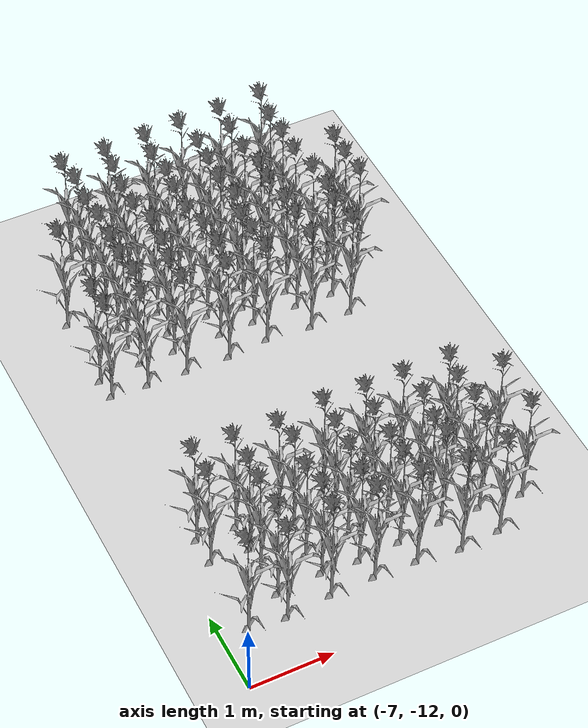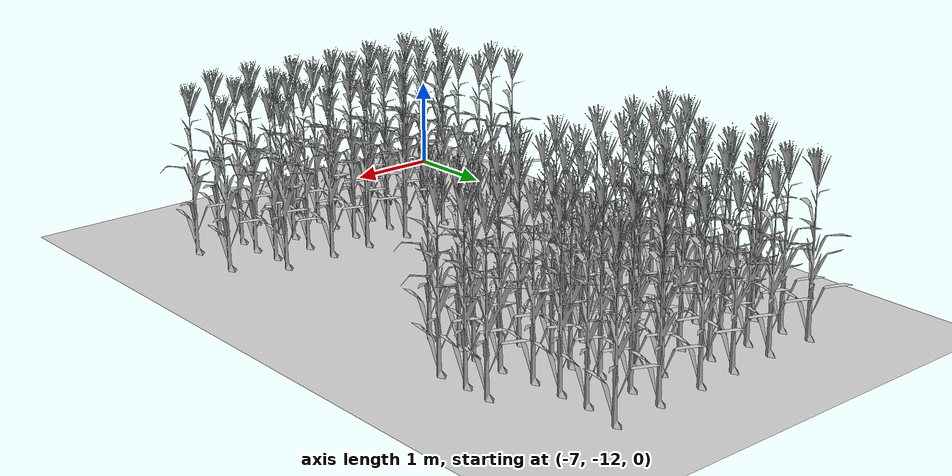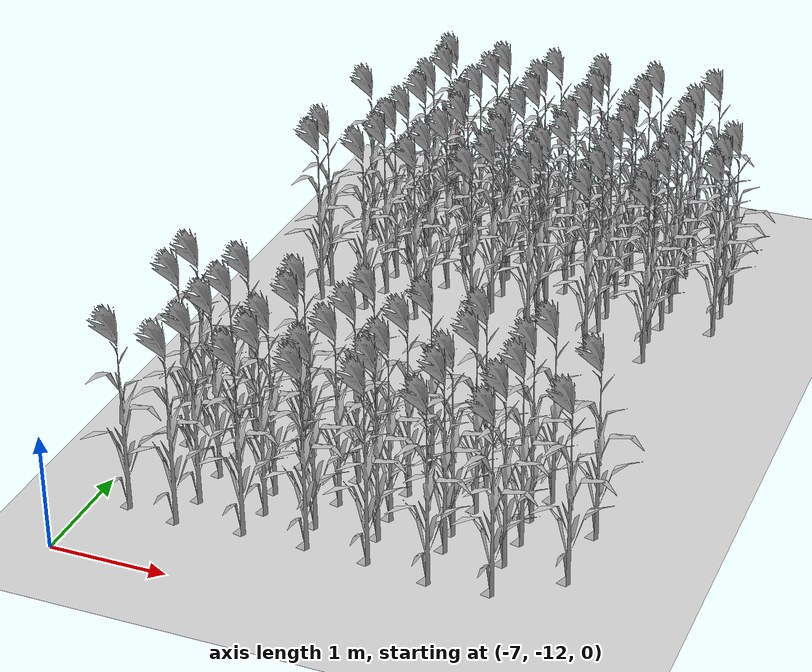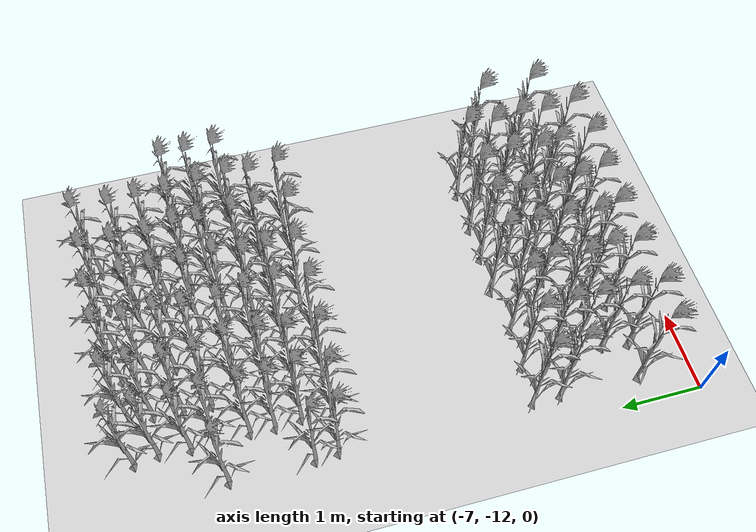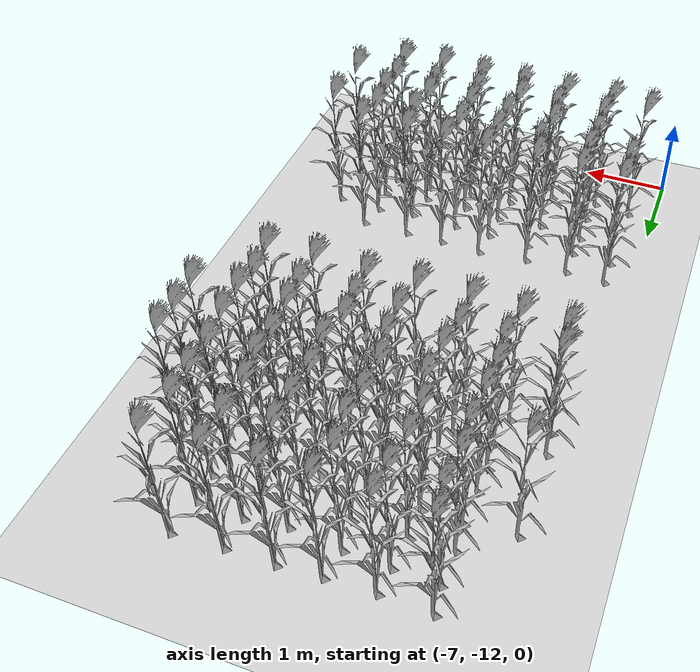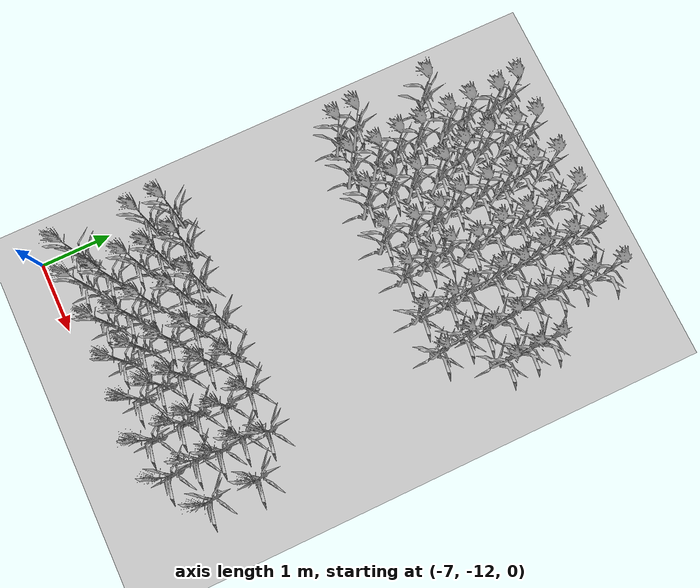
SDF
<sdf version="1.7">
 <world name="farmland_world">
  <model name="ground_plane">
   <static>1</static>
   <link name="link">
    <collision name="collision">
     <geometry><plane><normal>0 0 1</normal><size>40.0 40.0</size></plane></geometry>
     <surface><friction><ode><mu>100</mu><mu2>50</mu2></ode></friction></surface>
    </collision>
    <visual name="visual">
     <cast_shadows>0</cast_shadows>
     <geometry><plane><normal>0 0 1</normal><size>40.0 40.0</size></plane></geometry>
     <material>
      <script><uri>file://media/materials/scripts/gazebo.material</uri><name>Gazebo/Grey</name></script>
     </material>
    </visual>
   </link>
  </model>
  <model name="tree_3_2019">
   <static>1</static>
   <link name="link">
    <collision name="collision">
     <geometry><mesh><uri>model://Corn_low_poly/corn.obj</uri><scale>1 1 1</scale></mesh></geometry>
     <surface><friction><ode><mu>100</mu><mu2>50</mu2></ode></friction></surface>
    </collision>
    <visual name="visual">
     <geometry><mesh><uri>model://Corn_low_poly/corn.obj</uri><scale>1 1 1</scale></mesh></geometry>
    </visual>
   </link>
   <pose>-3.1188060616813673 -10.998462419891771 0 0 0 0</pose>
  </model>
  <model name="tree_3_2020">
   <static>1</static>
   <link name="link">
    <collision name="collision">
     <geometry><mesh><uri>model://Corn_low_poly/corn.obj</uri><scale>1 1 1</scale></mesh></geometry>
     <surface><friction><ode><mu>100</mu><mu2>50</mu2></ode></friction></surface>
    </collision>
    <visual name="visual">
     <geometry><mesh><uri>model://Corn_low_poly/corn.obj</uri><scale>1 1 1</scale></mesh></geometry>
    </visual>
   </link>
   <pose>-3.6424351699942092 -10.955396764620772 0 0 0 0</pose>
  </model>
  <model name="tree_3_2021">
   <static>1</static>
   <link name="link">
    <collision name="collision">
     <geometry><mesh><uri>model://Corn_low_poly/corn.obj</uri><scale>1 1 1</scale></mesh></geometry>
     <surface><friction><ode><mu>100</mu><mu2>50</mu2></ode></friction></surface>
    </collision>
    <visual name="visual">
     <geometry><mesh><uri>model://Corn_low_poly/corn.obj</uri><scale>1 1 1</scale></mesh></geometry>
    </visual>
   </link>
   <pose>-4.128545392084841 -10.950747902956085 0 0 0 0</pose>
  </model>
  <model name="tree_3_2022">
   <static>1</static>
   <link name="link">
    <collision name="collision">
     <geometry><mesh><uri>model://Corn_low_poly/corn.obj</uri><scale>1 1 1</scale></mesh></geometry>
     <surface><friction><ode><mu>100</mu><mu2>50</mu2></ode></friction></surface>
    </collision>
    <visual name="visual">
     <geometry><mesh><uri>model://Corn_low_poly/corn.obj</uri><scale>1 1 1</scale></mesh></geometry>
    </visual>
   </link>
   <pose>-4.665748753012415 -10.990858900688755 0 0 0 0</pose>
  </model>
  <model name="tree_3_2023">
   <static>1</static>
   <link name="link">
    <collision name="collision">
     <geometry><mesh><uri>model://Corn_low_poly/corn.obj</uri><scale>1 1 1</scale></mesh></geometry>
     <surface><friction><ode><mu>100</mu><mu2>50</mu2></ode></friction></surface>
    </collision>
    <visual name="visual">
     <geometry><mesh><uri>model://Corn_low_poly/corn.obj</uri><scale>1 1 1</scale></mesh></geometry>
    </visual>
   </link>
   <pose>-5.18372348365122 -11.019534800564706 0 0 0 0</pose>
  </model>
  <model name="tree_3_2024">
   <static>1</static>
   <link name="link">
    <collision name="collision">
     <geometry><mesh><uri>model://Corn_low_poly/corn.obj</uri><scale>1 1 1</scale></mesh></geometry>
     <surface><friction><ode><mu>100</mu><mu2>50</mu2></ode></friction></surface>
    </collision>
    <visual name="visual">
     <geometry><mesh><uri>model://Corn_low_poly/corn.obj</uri><scale>1 1 1</scale></mesh></geometry>
    </visual>
   </link>
   <pose>-5.628020525119721 -10.990071183110084 0 0 0 0</pose>
  </model>
  <model name="tree_3_2025">
   <static>1</static>
   <link name="link">
    <collision name="collision">
     <geometry><mesh><uri>model://Corn_low_poly/corn.obj</uri><scale>1 1 1</scale></mesh></geometry>
     <surface><friction><ode><mu>100</mu><mu2>50</mu2></ode></friction></surface>
    </collision>
    <visual name="visual">
     <geometry><mesh><uri>model://Corn_low_poly/corn.obj</uri><scale>1 1 1</scale></mesh></geometry>
    </visual>
   </link>
   <pose>-6.183372743550809 -11.029633708614561 0 0 0 0</pose>
  </model>
  <model name="tree_3_2054">
   <static>1</static>
   <link name="link">
    <collision name="collision">
     <geometry><mesh><uri>model://Corn_low_poly/corn.obj</uri><scale>1 1 1</scale></mesh></geometry>
     <surface><friction><ode><mu>100</mu><mu2>50</mu2></ode></friction></surface>
    </collision>
    <visual name="visual">
     <geometry><mesh><uri>model://Corn_low_poly/corn.obj</uri><scale>1 1 1</scale></mesh></geometry>
    </visual>
   </link>
   <pose>-3.601302174312438 -11.33980446337948 0 0 0 0</pose>
  </model>
  <model name="tree_3_2055">
   <static>1</static>
   <link name="link">
    <collision name="collision">
     <geometry><mesh><uri>model://Corn_low_poly/corn.obj</uri><scale>1 1 1</scale></mesh></geometry>
     <surface><friction><ode><mu>100</mu><mu2>50</mu2></ode></friction></surface>
    </collision>
    <visual name="visual">
     <geometry><mesh><uri>model://Corn_low_poly/corn.obj</uri><scale>1 1 1</scale></mesh></geometry>
    </visual>
   </link>
   <pose>-4.099351304013196 -11.376995340920022 0 0 0 0</pose>
  </model>
  <model name="tree_3_2056">
   <static>1</static>
   <link name="link">
    <collision name="collision">
     <geometry><mesh><uri>model://Corn_low_poly/corn.obj</uri><scale>1 1 1</scale></mesh></geometry>
     <surface><friction><ode><mu>100</mu><mu2>50</mu2></ode></friction></surface>
    </collision>
    <visual name="visual">
     <geometry><mesh><uri>model://Corn_low_poly/corn.obj</uri><scale>1 1 1</scale></mesh></geometry>
    </visual>
   </link>
   <pose>-4.619503359095879 -11.309855907956345 0 0 0 0</pose>
  </model>
  <model name="tree_3_2057">
   <static>1</static>
   <link name="link">
    <collision name="collision">
     <geometry><mesh><uri>model://Corn_low_poly/corn.obj</uri><scale>1 1 1</scale></mesh></geometry>
     <surface><friction><ode><mu>100</mu><mu2>50</mu2></ode></friction></surface>
    </collision>
    <visual name="visual">
     <geometry><mesh><uri>model://Corn_low_poly/corn.obj</uri><scale>1 1 1</scale></mesh></geometry>
    </visual>
   </link>
   <pose>-5.13489152892437 -11.294146244192163 0 0 0 0</pose>
  </model>
  <model name="tree_3_2058">
   <static>1</static>
   <link name="link">
    <collision name="collision">
     <geometry><mesh><uri>model://Corn_low_poly/corn.obj</uri><scale>1 1 1</scale></mesh></geometry>
     <surface><friction><ode><mu>100</mu><mu2>50</mu2></ode></friction></surface>
    </collision>
    <visual name="visual">
     <geometry><mesh><uri>model://Corn_low_poly/corn.obj</uri><scale>1 1 1</scale></mesh></geometry>
    </visual>
   </link>
   <pose>-5.671768082941956 -11.30155039447048 0 0 0 0</pose>
  </model>
  <model name="tree_3_2059">
   <static>1</static>
   <link name="link">
    <collision name="collision">
     <geometry><mesh><uri>model://Corn_low_poly/corn.obj</uri><scale>1 1 1</scale></mesh></geometry>
     <surface><friction><ode><mu>100</mu><mu2>50</mu2></ode></friction></surface>
    </collision>
    <visual name="visual">
     <geometry><mesh><uri>model://Corn_low_poly/corn.obj</uri><scale>1 1 1</scale></mesh></geometry>
    </visual>
   </link>
   <pose>-6.22611098187191 -11.355826471442418 0 0 0 0</pose>
  </model>
  <model name="tree_3_2060">
   <static>1</static>
   <link name="link">
    <collision name="collision">
     <geometry><mesh><uri>model://Corn_low_poly/corn.obj</uri><scale>1 1 1</scale></mesh></geometry>
     <surface><friction><ode><mu>100</mu><mu2>50</mu2></ode></friction></surface>
    </collision>
    <visual name="visual">
     <geometry><mesh><uri>model://Corn_low_poly/corn.obj</uri><scale>1 1 1</scale></mesh></geometry>
    </visual>
   </link>
   <pose>-6.663393380693463 -11.299957244044558 0 0 0 0</pose>
  </model>
  <model name="tree_3_2122">
   <static>1</static>
   <link name="link">
    <collision name="collision">
     <geometry><mesh><uri>model://Corn_low_poly/corn.obj</uri><scale>1 1 1</scale></mesh></geometry>
     <surface><friction><ode><mu>100</mu><mu2>50</mu2></ode></friction></surface>
    </collision>
    <visual name="visual">
     <geometry><mesh><uri>model://Corn_low_poly/corn.obj</uri><scale>1 1 1</scale></mesh></geometry>
    </visual>
   </link>
   <pose>-3.579204399567506 -10.01309165122431 0 0 0 0</pose>
  </model>
  <model name="tree_3_2123">
   <static>1</static>
   <link name="link">
    <collision name="collision">
     <geometry><mesh><uri>model://Corn_low_poly/corn.obj</uri><scale>1 1 1</scale></mesh></geometry>
     <surface><friction><ode><mu>100</mu><mu2>50</mu2></ode></friction></surface>
    </collision>
    <visual name="visual">
     <geometry><mesh><uri>model://Corn_low_poly/corn.obj</uri><scale>1 1 1</scale></mesh></geometry>
    </visual>
   </link>
   <pose>-4.147175264702648 -10.006349065112603 0 0 0 0</pose>
  </model>
  <model name="tree_3_2124">
   <static>1</static>
   <link name="link">
    <collision name="collision">
     <geometry><mesh><uri>model://Corn_low_poly/corn.obj</uri><scale>1 1 1</scale></mesh></geometry>
     <surface><friction><ode><mu>100</mu><mu2>50</mu2></ode></friction></surface>
    </collision>
    <visual name="visual">
     <geometry><mesh><uri>model://Corn_low_poly/corn.obj</uri><scale>1 1 1</scale></mesh></geometry>
    </visual>
   </link>
   <pose>-4.610092629553595 -10.002192538831888 0 0 0 0</pose>
  </model>
  <model name="tree_3_2125">
   <static>1</static>
   <link name="link">
    <collision name="collision">
     <geometry><mesh><uri>model://Corn_low_poly/corn.obj</uri><scale>1 1 1</scale></mesh></geometry>
     <surface><friction><ode><mu>100</mu><mu2>50</mu2></ode></friction></surface>
    </collision>
    <visual name="visual">
     <geometry><mesh><uri>model://Corn_low_poly/corn.obj</uri><scale>1 1 1</scale></mesh></geometry>
    </visual>
   </link>
   <pose>-5.1029342259847565 -9.97841376687061 0 0 0 0</pose>
  </model>
  <model name="tree_3_2126">
   <static>1</static>
   <link name="link">
    <collision name="collision">
     <geometry><mesh><uri>model://Corn_low_poly/corn.obj</uri><scale>1 1 1</scale></mesh></geometry>
     <surface><friction><ode><mu>100</mu><mu2>50</mu2></ode></friction></surface>
    </collision>
    <visual name="visual">
     <geometry><mesh><uri>model://Corn_low_poly/corn.obj</uri><scale>1 1 1</scale></mesh></geometry>
    </visual>
   </link>
   <pose>-5.681179881802469 -10.035323747498127 0 0 0 0</pose>
  </model>
  <model name="tree_3_2127">
   <static>1</static>
   <link name="link">
    <collision name="collision">
     <geometry><mesh><uri>model://Corn_low_poly/corn.obj</uri><scale>1 1 1</scale></mesh></geometry>
     <surface><friction><ode><mu>100</mu><mu2>50</mu2></ode></friction></surface>
    </collision>
    <visual name="visual">
     <geometry><mesh><uri>model://Corn_low_poly/corn.obj</uri><scale>1 1 1</scale></mesh></geometry>
    </visual>
   </link>
   <pose>-6.189253367888482 -9.997270347225456 0 0 0 0</pose>
  </model>
  <model name="tree_3_2128">
   <static>1</static>
   <link name="link">
    <collision name="collision">
     <geometry><mesh><uri>model://Corn_low_poly/corn.obj</uri><scale>1 1 1</scale></mesh></geometry>
     <surface><friction><ode><mu>100</mu><mu2>50</mu2></ode></friction></surface>
    </collision>
    <visual name="visual">
     <geometry><mesh><uri>model://Corn_low_poly/corn.obj</uri><scale>1 1 1</scale></mesh></geometry>
    </visual>
   </link>
   <pose>-6.656372588608561 -9.973345540743185 0 0 0 0</pose>
  </model>
  <model name="tree_3_2155">
   <static>1</static>
   <link name="link">
    <collision name="collision">
     <geometry><mesh><uri>model://Corn_low_poly/corn.obj</uri><scale>1 1 1</scale></mesh></geometry>
     <surface><friction><ode><mu>100</mu><mu2>50</mu2></ode></friction></surface>
    </collision>
    <visual name="visual">
     <geometry><mesh><uri>model://Corn_low_poly/corn.obj</uri><scale>1 1 1</scale></mesh></geometry>
    </visual>
   </link>
   <pose>-3.1076031799791575 -10.35614904000085 0 0 0 0</pose>
  </model>
  <model name="tree_3_2156">
   <static>1</static>
   <link name="link">
    <collision name="collision">
     <geometry><mesh><uri>model://Corn_low_poly/corn.obj</uri><scale>1 1 1</scale></mesh></geometry>
     <surface><friction><ode><mu>100</mu><mu2>50</mu2></ode></friction></surface>
    </collision>
    <visual name="visual">
     <geometry><mesh><uri>model://Corn_low_poly/corn.obj</uri><scale>1 1 1</scale></mesh></geometry>
    </visual>
   </link>
   <pose>-3.648696620794069 -10.318726534144576 0 0 0 0</pose>
  </model>
  <model name="tree_3_2157">
   <static>1</static>
   <link name="link">
    <collision name="collision">
     <geometry><mesh><uri>model://Corn_low_poly/corn.obj</uri><scale>1 1 1</scale></mesh></geometry>
     <surface><friction><ode><mu>100</mu><mu2>50</mu2></ode></friction></surface>
    </collision>
    <visual name="visual">
     <geometry><mesh><uri>model://Corn_low_poly/corn.obj</uri><scale>1 1 1</scale></mesh></geometry>
    </visual>
   </link>
   <pose>-4.093702147803998 -10.363624869590371 0 0 0 0</pose>
  </model>
  <model name="tree_3_2158">
   <static>1</static>
   <link name="link">
    <collision name="collision">
     <geometry><mesh><uri>model://Corn_low_poly/corn.obj</uri><scale>1 1 1</scale></mesh></geometry>
     <surface><friction><ode><mu>100</mu><mu2>50</mu2></ode></friction></surface>
    </collision>
    <visual name="visual">
     <geometry><mesh><uri>model://Corn_low_poly/corn.obj</uri><scale>1 1 1</scale></mesh></geometry>
    </visual>
   </link>
   <pose>-4.675922366202344 -10.331543391687552 0 0 0 0</pose>
  </model>
  <model name="tree_3_2159">
   <static>1</static>
   <link name="link">
    <collision name="collision">
     <geometry><mesh><uri>model://Corn_low_poly/corn.obj</uri><scale>1 1 1</scale></mesh></geometry>
     <surface><friction><ode><mu>100</mu><mu2>50</mu2></ode></friction></surface>
    </collision>
    <visual name="visual">
     <geometry><mesh><uri>model://Corn_low_poly/corn.obj</uri><scale>1 1 1</scale></mesh></geometry>
    </visual>
   </link>
   <pose>-5.125628625005672 -10.309964587478628 0 0 0 0</pose>
  </model>
  <model name="tree_3_2160">
   <static>1</static>
   <link name="link">
    <collision name="collision">
     <geometry><mesh><uri>model://Corn_low_poly/corn.obj</uri><scale>1 1 1</scale></mesh></geometry>
     <surface><friction><ode><mu>100</mu><mu2>50</mu2></ode></friction></surface>
    </collision>
    <visual name="visual">
     <geometry><mesh><uri>model://Corn_low_poly/corn.obj</uri><scale>1 1 1</scale></mesh></geometry>
    </visual>
   </link>
   <pose>-5.622039448501385 -10.292680232545834 0 0 0 0</pose>
  </model>
  <model name="tree_3_2161">
   <static>1</static>
   <link name="link">
    <collision name="collision">
     <geometry><mesh><uri>model://Corn_low_poly/corn.obj</uri><scale>1 1 1</scale></mesh></geometry>
     <surface><friction><ode><mu>100</mu><mu2>50</mu2></ode></friction></surface>
    </collision>
    <visual name="visual">
     <geometry><mesh><uri>model://Corn_low_poly/corn.obj</uri><scale>1 1 1</scale></mesh></geometry>
    </visual>
   </link>
   <pose>-6.181930789723114 -10.344782435574176 0 0 0 0</pose>
  </model>
  <model name="tree_3_2162">
   <static>1</static>
   <link name="link">
    <collision name="collision">
     <geometry><mesh><uri>model://Corn_low_poly/corn.obj</uri><scale>1 1 1</scale></mesh></geometry>
     <surface><friction><ode><mu>100</mu><mu2>50</mu2></ode></friction></surface>
    </collision>
    <visual name="visual">
     <geometry><mesh><uri>model://Corn_low_poly/corn.obj</uri><scale>1 1 1</scale></mesh></geometry>
    </visual>
   </link>
   <pose>-6.6489467841598495 -10.318924975865166 0 0 0 0</pose>
  </model>
  <model name="tree_3_2190">
   <static>1</static>
   <link name="link">
    <collision name="collision">
     <geometry><mesh><uri>model://Corn_low_poly/corn.obj</uri><scale>1 1 1</scale></mesh></geometry>
     <surface><friction><ode><mu>100</mu><mu2>50</mu2></ode></friction></surface>
    </collision>
    <visual name="visual">
     <geometry><mesh><uri>model://Corn_low_poly/corn.obj</uri><scale>1 1 1</scale></mesh></geometry>
    </visual>
   </link>
   <pose>-3.6150938213091117 -10.647083727629608 0 0 0 0</pose>
  </model>
  <model name="tree_3_2191">
   <static>1</static>
   <link name="link">
    <collision name="collision">
     <geometry><mesh><uri>model://Corn_low_poly/corn.obj</uri><scale>1 1 1</scale></mesh></geometry>
     <surface><friction><ode><mu>100</mu><mu2>50</mu2></ode></friction></surface>
    </collision>
    <visual name="visual">
     <geometry><mesh><uri>model://Corn_low_poly/corn.obj</uri><scale>1 1 1</scale></mesh></geometry>
    </visual>
   </link>
   <pose>-4.152594344029412 -10.71880161723606 0 0 0 0</pose>
  </model>
  <model name="tree_3_2192">
   <static>1</static>
   <link name="link">
    <collision name="collision">
     <geometry><mesh><uri>model://Corn_low_poly/corn.obj</uri><scale>1 1 1</scale></mesh></geometry>
     <surface><friction><ode><mu>100</mu><mu2>50</mu2></ode></friction></surface>
    </collision>
    <visual name="visual">
     <geometry><mesh><uri>model://Corn_low_poly/corn.obj</uri><scale>1 1 1</scale></mesh></geometry>
    </visual>
   </link>
   <pose>-4.677950480850803 -10.708984951683629 0 0 0 0</pose>
  </model>
  <model name="tree_3_2193">
   <static>1</static>
   <link name="link">
    <collision name="collision">
     <geometry><mesh><uri>model://Corn_low_poly/corn.obj</uri><scale>1 1 1</scale></mesh></geometry>
     <surface><friction><ode><mu>100</mu><mu2>50</mu2></ode></friction></surface>
    </collision>
    <visual name="visual">
     <geometry><mesh><uri>model://Corn_low_poly/corn.obj</uri><scale>1 1 1</scale></mesh></geometry>
    </visual>
   </link>
   <pose>-5.137192936481968 -10.657943141993634 0 0 0 0</pose>
  </model>
  <model name="tree_3_2194">
   <static>1</static>
   <link name="link">
    <collision name="collision">
     <geometry><mesh><uri>model://Corn_low_poly/corn.obj</uri><scale>1 1 1</scale></mesh></geometry>
     <surface><friction><ode><mu>100</mu><mu2>50</mu2></ode></friction></surface>
    </collision>
    <visual name="visual">
     <geometry><mesh><uri>model://Corn_low_poly/corn.obj</uri><scale>1 1 1</scale></mesh></geometry>
    </visual>
   </link>
   <pose>-5.678922779426807 -10.700974749874465 0 0 0 0</pose>
  </model>
  <model name="tree_3_2195">
   <static>1</static>
   <link name="link">
    <collision name="collision">
     <geometry><mesh><uri>model://Corn_low_poly/corn.obj</uri><scale>1 1 1</scale></mesh></geometry>
     <surface><friction><ode><mu>100</mu><mu2>50</mu2></ode></friction></surface>
    </collision>
    <visual name="visual">
     <geometry><mesh><uri>model://Corn_low_poly/corn.obj</uri><scale>1 1 1</scale></mesh></geometry>
    </visual>
   </link>
   <pose>-6.198448953334536 -10.640620984440472 0 0 0 0</pose>
  </model>
  <model name="tree_3_2223">
   <static>1</static>
   <link name="link">
    <collision name="collision">
     <geometry><mesh><uri>model://Corn_low_poly/corn.obj</uri><scale>1 1 1</scale></mesh></geometry>
     <surface><friction><ode><mu>100</mu><mu2>50</mu2></ode></friction></surface>
    </collision>
    <visual name="visual">
     <geometry><mesh><uri>model://Corn_low_poly/corn.obj</uri><scale>1 1 1</scale></mesh></geometry>
    </visual>
   </link>
   <pose>-3.1117121745637126 -6.9738410883011515 0 0 0 0</pose>
  </model>
  <model name="tree_3_2224">
   <static>1</static>
   <link name="link">
    <collision name="collision">
     <geometry><mesh><uri>model://Corn_low_poly/corn.obj</uri><scale>1 1 1</scale></mesh></geometry>
     <surface><friction><ode><mu>100</mu><mu2>50</mu2></ode></friction></surface>
    </collision>
    <visual name="visual">
     <geometry><mesh><uri>model://Corn_low_poly/corn.obj</uri><scale>1 1 1</scale></mesh></geometry>
    </visual>
   </link>
   <pose>-3.5690700510928135 -7.041029934449035 0 0 0 0</pose>
  </model>
  <model name="tree_3_2225">
   <static>1</static>
   <link name="link">
    <collision name="collision">
     <geometry><mesh><uri>model://Corn_low_poly/corn.obj</uri><scale>1 1 1</scale></mesh></geometry>
     <surface><friction><ode><mu>100</mu><mu2>50</mu2></ode></friction></surface>
    </collision>
    <visual name="visual">
     <geometry><mesh><uri>model://Corn_low_poly/corn.obj</uri><scale>1 1 1</scale></mesh></geometry>
    </visual>
   </link>
   <pose>-4.093838897696616 -7.016848312792825 0 0 0 0</pose>
  </model>
  <model name="tree_3_2226">
   <static>1</static>
   <link name="link">
    <collision name="collision">
     <geometry><mesh><uri>model://Corn_low_poly/corn.obj</uri><scale>1 1 1</scale></mesh></geometry>
     <surface><friction><ode><mu>100</mu><mu2>50</mu2></ode></friction></surface>
    </collision>
    <visual name="visual">
     <geometry><mesh><uri>model://Corn_low_poly/corn.obj</uri><scale>1 1 1</scale></mesh></geometry>
    </visual>
   </link>
   <pose>-4.676135960275924 -7.029477205636847 0 0 0 0</pose>
  </model>
  <model name="tree_3_2227">
   <static>1</static>
   <link name="link">
    <collision name="collision">
     <geometry><mesh><uri>model://Corn_low_poly/corn.obj</uri><scale>1 1 1</scale></mesh></geometry>
     <surface><friction><ode><mu>100</mu><mu2>50</mu2></ode></friction></surface>
    </collision>
    <visual name="visual">
     <geometry><mesh><uri>model://Corn_low_poly/corn.obj</uri><scale>1 1 1</scale></mesh></geometry>
    </visual>
   </link>
   <pose>-5.115711233943775 -6.967577273991274 0 0 0 0</pose>
  </model>
  <model name="tree_3_2228">
   <static>1</static>
   <link name="link">
    <collision name="collision">
     <geometry><mesh><uri>model://Corn_low_poly/corn.obj</uri><scale>1 1 1</scale></mesh></geometry>
     <surface><friction><ode><mu>100</mu><mu2>50</mu2></ode></friction></surface>
    </collision>
    <visual name="visual">
     <geometry><mesh><uri>model://Corn_low_poly/corn.obj</uri><scale>1 1 1</scale></mesh></geometry>
    </visual>
   </link>
   <pose>-5.652800482511302 -7.01103362735997 0 0 0 0</pose>
  </model>
  <model name="tree_3_2229">
   <static>1</static>
   <link name="link">
    <collision name="collision">
     <geometry><mesh><uri>model://Corn_low_poly/corn.obj</uri><scale>1 1 1</scale></mesh></geometry>
     <surface><friction><ode><mu>100</mu><mu2>50</mu2></ode></friction></surface>
    </collision>
    <visual name="visual">
     <geometry><mesh><uri>model://Corn_low_poly/corn.obj</uri><scale>1 1 1</scale></mesh></geometry>
    </visual>
   </link>
   <pose>-6.170939097241858 -6.9891766081745565 0 0 0 0</pose>
  </model>
  <model name="tree_3_2258">
   <static>1</static>
   <link name="link">
    <collision name="collision">
     <geometry><mesh><uri>model://Corn_low_poly/corn.obj</uri><scale>1 1 1</scale></mesh></geometry>
     <surface><friction><ode><mu>100</mu><mu2>50</mu2></ode></friction></surface>
    </collision>
    <visual name="visual">
     <geometry><mesh><uri>model://Corn_low_poly/corn.obj</uri><scale>1 1 1</scale></mesh></geometry>
    </visual>
   </link>
   <pose>-3.612918464989444 -7.297937894657485 0 0 0 0</pose>
  </model>
  <model name="tree_3_2259">
   <static>1</static>
   <link name="link">
    <collision name="collision">
     <geometry><mesh><uri>model://Corn_low_poly/corn.obj</uri><scale>1 1 1</scale></mesh></geometry>
     <surface><friction><ode><mu>100</mu><mu2>50</mu2></ode></friction></surface>
    </collision>
    <visual name="visual">
     <geometry><mesh><uri>model://Corn_low_poly/corn.obj</uri><scale>1 1 1</scale></mesh></geometry>
    </visual>
   </link>
   <pose>-4.087010044893763 -7.28702818424102 0 0 0 0</pose>
  </model>
  <model name="tree_3_2260">
   <static>1</static>
   <link name="link">
    <collision name="collision">
     <geometry><mesh><uri>model://Corn_low_poly/corn.obj</uri><scale>1 1 1</scale></mesh></geometry>
     <surface><friction><ode><mu>100</mu><mu2>50</mu2></ode></friction></surface>
    </collision>
    <visual name="visual">
     <geometry><mesh><uri>model://Corn_low_poly/corn.obj</uri><scale>1 1 1</scale></mesh></geometry>
    </visual>
   </link>
   <pose>-4.661442453372088 -7.29754089586305 0 0 0 0</pose>
  </model>
  <model name="tree_3_2261">
   <static>1</static>
   <link name="link">
    <collision name="collision">
     <geometry><mesh><uri>model://Corn_low_poly/corn.obj</uri><scale>1 1 1</scale></mesh></geometry>
     <surface><friction><ode><mu>100</mu><mu2>50</mu2></ode></friction></surface>
    </collision>
    <visual name="visual">
     <geometry><mesh><uri>model://Corn_low_poly/corn.obj</uri><scale>1 1 1</scale></mesh></geometry>
    </visual>
   </link>
   <pose>-5.102547328972916 -7.3040404051510786 0 0 0 0</pose>
  </model>
  <model name="tree_3_2262">
   <static>1</static>
   <link name="link">
    <collision name="collision">
     <geometry><mesh><uri>model://Corn_low_poly/corn.obj</uri><scale>1 1 1</scale></mesh></geometry>
     <surface><friction><ode><mu>100</mu><mu2>50</mu2></ode></friction></surface>
    </collision>
    <visual name="visual">
     <geometry><mesh><uri>model://Corn_low_poly/corn.obj</uri><scale>1 1 1</scale></mesh></geometry>
    </visual>
   </link>
   <pose>-5.707351624416964 -7.305963749547142 0 0 0 0</pose>
  </model>
  <model name="tree_3_2263">
   <static>1</static>
   <link name="link">
    <collision name="collision">
     <geometry><mesh><uri>model://Corn_low_poly/corn.obj</uri><scale>1 1 1</scale></mesh></geometry>
     <surface><friction><ode><mu>100</mu><mu2>50</mu2></ode></friction></surface>
    </collision>
    <visual name="visual">
     <geometry><mesh><uri>model://Corn_low_poly/corn.obj</uri><scale>1 1 1</scale></mesh></geometry>
    </visual>
   </link>
   <pose>-6.14156454239216 -7.302867716331731 0 0 0 0</pose>
  </model>
  <model name="tree_3_2264">
   <static>1</static>
   <link name="link">
    <collision name="collision">
     <geometry><mesh><uri>model://Corn_low_poly/corn.obj</uri><scale>1 1 1</scale></mesh></geometry>
     <surface><friction><ode><mu>100</mu><mu2>50</mu2></ode></friction></surface>
    </collision>
    <visual name="visual">
     <geometry><mesh><uri>model://Corn_low_poly/corn.obj</uri><scale>1 1 1</scale></mesh></geometry>
    </visual>
   </link>
   <pose>-6.675735514458045 -7.349871289974445 0 0 0 0</pose>
  </model>
  <model name="tree_3_2292">
   <static>1</static>
   <link name="link">
    <collision name="collision">
     <geometry><mesh><uri>model://Corn_low_poly/corn.obj</uri><scale>1 1 1</scale></mesh></geometry>
     <surface><friction><ode><mu>100</mu><mu2>50</mu2></ode></friction></surface>
    </collision>
    <visual name="visual">
     <geometry><mesh><uri>model://Corn_low_poly/corn.obj</uri><scale>1 1 1</scale></mesh></geometry>
    </visual>
   </link>
   <pose>-3.557365060436528 -7.654924539174369 0 0 0 0</pose>
  </model>
  <model name="tree_3_2293">
   <static>1</static>
   <link name="link">
    <collision name="collision">
     <geometry><mesh><uri>model://Corn_low_poly/corn.obj</uri><scale>1 1 1</scale></mesh></geometry>
     <surface><friction><ode><mu>100</mu><mu2>50</mu2></ode></friction></surface>
    </collision>
    <visual name="visual">
     <geometry><mesh><uri>model://Corn_low_poly/corn.obj</uri><scale>1 1 1</scale></mesh></geometry>
    </visual>
   </link>
   <pose>-4.085350054449222 -7.670139638096989 0 0 0 0</pose>
  </model>
  <model name="tree_3_2294">
   <static>1</static>
   <link name="link">
    <collision name="collision">
     <geometry><mesh><uri>model://Corn_low_poly/corn.obj</uri><scale>1 1 1</scale></mesh></geometry>
     <surface><friction><ode><mu>100</mu><mu2>50</mu2></ode></friction></surface>
    </collision>
    <visual name="visual">
     <geometry><mesh><uri>model://Corn_low_poly/corn.obj</uri><scale>1 1 1</scale></mesh></geometry>
    </visual>
   </link>
   <pose>-4.645003939107649 -7.620698994556048 0 0 0 0</pose>
  </model>
  <model name="tree_3_2295">
   <static>1</static>
   <link name="link">
    <collision name="collision">
     <geometry><mesh><uri>model://Corn_low_poly/corn.obj</uri><scale>1 1 1</scale></mesh></geometry>
     <surface><friction><ode><mu>100</mu><mu2>50</mu2></ode></friction></surface>
    </collision>
    <visual name="visual">
     <geometry><mesh><uri>model://Corn_low_poly/corn.obj</uri><scale>1 1 1</scale></mesh></geometry>
    </visual>
   </link>
   <pose>-5.164416470251318 -7.670657009445404 0 0 0 0</pose>
  </model>
  <model name="tree_3_2296">
   <static>1</static>
   <link name="link">
    <collision name="collision">
     <geometry><mesh><uri>model://Corn_low_poly/corn.obj</uri><scale>1 1 1</scale></mesh></geometry>
     <surface><friction><ode><mu>100</mu><mu2>50</mu2></ode></friction></surface>
    </collision>
    <visual name="visual">
     <geometry><mesh><uri>model://Corn_low_poly/corn.obj</uri><scale>1 1 1</scale></mesh></geometry>
    </visual>
   </link>
   <pose>-5.70653884238292 -7.659127738435613 0 0 0 0</pose>
  </model>
  <model name="tree_3_2297">
   <static>1</static>
   <link name="link">
    <collision name="collision">
     <geometry><mesh><uri>model://Corn_low_poly/corn.obj</uri><scale>1 1 1</scale></mesh></geometry>
     <surface><friction><ode><mu>100</mu><mu2>50</mu2></ode></friction></surface>
    </collision>
    <visual name="visual">
     <geometry><mesh><uri>model://Corn_low_poly/corn.obj</uri><scale>1 1 1</scale></mesh></geometry>
    </visual>
   </link>
   <pose>-6.202652671311217 -7.65123060923813 0 0 0 0</pose>
  </model>
  <model name="tree_3_2298">
   <static>1</static>
   <link name="link">
    <collision name="collision">
     <geometry><mesh><uri>model://Corn_low_poly/corn.obj</uri><scale>1 1 1</scale></mesh></geometry>
     <surface><friction><ode><mu>100</mu><mu2>50</mu2></ode></friction></surface>
    </collision>
    <visual name="visual">
     <geometry><mesh><uri>model://Corn_low_poly/corn.obj</uri><scale>1 1 1</scale></mesh></geometry>
    </visual>
   </link>
   <pose>-6.650255774483709 -7.626102514321328 0 0 0 0</pose>
  </model>
  <model name="tree_3_2326">
   <static>1</static>
   <link name="link">
    <collision name="collision">
     <geometry><mesh><uri>model://Corn_low_poly/corn.obj</uri><scale>1 1 1</scale></mesh></geometry>
     <surface><friction><ode><mu>100</mu><mu2>50</mu2></ode></friction></surface>
    </collision>
    <visual name="visual">
     <geometry><mesh><uri>model://Corn_low_poly/corn.obj</uri><scale>1 1 1</scale></mesh></geometry>
    </visual>
   </link>
   <pose>-3.6416149733113627 -5.993241072173569 0 0 0 0</pose>
  </model>
  <model name="tree_3_2327">
   <static>1</static>
   <link name="link">
    <collision name="collision">
     <geometry><mesh><uri>model://Corn_low_poly/corn.obj</uri><scale>1 1 1</scale></mesh></geometry>
     <surface><friction><ode><mu>100</mu><mu2>50</mu2></ode></friction></surface>
    </collision>
    <visual name="visual">
     <geometry><mesh><uri>model://Corn_low_poly/corn.obj</uri><scale>1 1 1</scale></mesh></geometry>
    </visual>
   </link>
   <pose>-4.167832141326382 -6.038045519904129 0 0 0 0</pose>
  </model>
  <model name="tree_3_2328">
   <static>1</static>
   <link name="link">
    <collision name="collision">
     <geometry><mesh><uri>model://Corn_low_poly/corn.obj</uri><scale>1 1 1</scale></mesh></geometry>
     <surface><friction><ode><mu>100</mu><mu2>50</mu2></ode></friction></surface>
    </collision>
    <visual name="visual">
     <geometry><mesh><uri>model://Corn_low_poly/corn.obj</uri><scale>1 1 1</scale></mesh></geometry>
    </visual>
   </link>
   <pose>-4.619521592329546 -6.02806933338602 0 0 0 0</pose>
  </model>
  <model name="tree_3_2329">
   <static>1</static>
   <link name="link">
    <collision name="collision">
     <geometry><mesh><uri>model://Corn_low_poly/corn.obj</uri><scale>1 1 1</scale></mesh></geometry>
     <surface><friction><ode><mu>100</mu><mu2>50</mu2></ode></friction></surface>
    </collision>
    <visual name="visual">
     <geometry><mesh><uri>model://Corn_low_poly/corn.obj</uri><scale>1 1 1</scale></mesh></geometry>
    </visual>
   </link>
   <pose>-5.139666208584348 -5.9891810205151685 0 0 0 0</pose>
  </model>
  <model name="tree_3_2330">
   <static>1</static>
   <link name="link">
    <collision name="collision">
     <geometry><mesh><uri>model://Corn_low_poly/corn.obj</uri><scale>1 1 1</scale></mesh></geometry>
     <surface><friction><ode><mu>100</mu><mu2>50</mu2></ode></friction></surface>
    </collision>
    <visual name="visual">
     <geometry><mesh><uri>model://Corn_low_poly/corn.obj</uri><scale>1 1 1</scale></mesh></geometry>
    </visual>
   </link>
   <pose>-5.710373252993286 -5.99743900605377 0 0 0 0</pose>
  </model>
  <model name="tree_3_2331">
   <static>1</static>
   <link name="link">
    <collision name="collision">
     <geometry><mesh><uri>model://Corn_low_poly/corn.obj</uri><scale>1 1 1</scale></mesh></geometry>
     <surface><friction><ode><mu>100</mu><mu2>50</mu2></ode></friction></surface>
    </collision>
    <visual name="visual">
     <geometry><mesh><uri>model://Corn_low_poly/corn.obj</uri><scale>1 1 1</scale></mesh></geometry>
    </visual>
   </link>
   <pose>-6.1768007299402035 -6.009781994251623 0 0 0 0</pose>
  </model>
  <model name="tree_3_2359">
   <static>1</static>
   <link name="link">
    <collision name="collision">
     <geometry><mesh><uri>model://Corn_low_poly/corn.obj</uri><scale>1 1 1</scale></mesh></geometry>
     <surface><friction><ode><mu>100</mu><mu2>50</mu2></ode></friction></surface>
    </collision>
    <visual name="visual">
     <geometry><mesh><uri>model://Corn_low_poly/corn.obj</uri><scale>1 1 1</scale></mesh></geometry>
    </visual>
   </link>
   <pose>-3.118364878200184 -6.342985378748024 0 0 0 0</pose>
  </model>
  <model name="tree_3_2360">
   <static>1</static>
   <link name="link">
    <collision name="collision">
     <geometry><mesh><uri>model://Corn_low_poly/corn.obj</uri><scale>1 1 1</scale></mesh></geometry>
     <surface><friction><ode><mu>100</mu><mu2>50</mu2></ode></friction></surface>
    </collision>
    <visual name="visual">
     <geometry><mesh><uri>model://Corn_low_poly/corn.obj</uri><scale>1 1 1</scale></mesh></geometry>
    </visual>
   </link>
   <pose>-3.639583403659242 -6.331303711368394 0 0 0 0</pose>
  </model>
  <model name="tree_3_2361">
   <static>1</static>
   <link name="link">
    <collision name="collision">
     <geometry><mesh><uri>model://Corn_low_poly/corn.obj</uri><scale>1 1 1</scale></mesh></geometry>
     <surface><friction><ode><mu>100</mu><mu2>50</mu2></ode></friction></surface>
    </collision>
    <visual name="visual">
     <geometry><mesh><uri>model://Corn_low_poly/corn.obj</uri><scale>1 1 1</scale></mesh></geometry>
    </visual>
   </link>
   <pose>-4.108212298477536 -6.353298919463818 0 0 0 0</pose>
  </model>
  <model name="tree_3_2362">
   <static>1</static>
   <link name="link">
    <collision name="collision">
     <geometry><mesh><uri>model://Corn_low_poly/corn.obj</uri><scale>1 1 1</scale></mesh></geometry>
     <surface><friction><ode><mu>100</mu><mu2>50</mu2></ode></friction></surface>
    </collision>
    <visual name="visual">
     <geometry><mesh><uri>model://Corn_low_poly/corn.obj</uri><scale>1 1 1</scale></mesh></geometry>
    </visual>
   </link>
   <pose>-4.64207177642826 -6.361278237293592 0 0 0 0</pose>
  </model>
  <model name="tree_3_2363">
   <static>1</static>
   <link name="link">
    <collision name="collision">
     <geometry><mesh><uri>model://Corn_low_poly/corn.obj</uri><scale>1 1 1</scale></mesh></geometry>
     <surface><friction><ode><mu>100</mu><mu2>50</mu2></ode></friction></surface>
    </collision>
    <visual name="visual">
     <geometry><mesh><uri>model://Corn_low_poly/corn.obj</uri><scale>1 1 1</scale></mesh></geometry>
    </visual>
   </link>
   <pose>-5.174948034734742 -6.287004556602931 0 0 0 0</pose>
  </model>
  <model name="tree_3_2364">
   <static>1</static>
   <link name="link">
    <collision name="collision">
     <geometry><mesh><uri>model://Corn_low_poly/corn.obj</uri><scale>1 1 1</scale></mesh></geometry>
     <surface><friction><ode><mu>100</mu><mu2>50</mu2></ode></friction></surface>
    </collision>
    <visual name="visual">
     <geometry><mesh><uri>model://Corn_low_poly/corn.obj</uri><scale>1 1 1</scale></mesh></geometry>
    </visual>
   </link>
   <pose>-5.711297334341872 -6.326646928403893 0 0 0 0</pose>
  </model>
  <model name="tree_3_2365">
   <static>1</static>
   <link name="link">
    <collision name="collision">
     <geometry><mesh><uri>model://Corn_low_poly/corn.obj</uri><scale>1 1 1</scale></mesh></geometry>
     <surface><friction><ode><mu>100</mu><mu2>50</mu2></ode></friction></surface>
    </collision>
    <visual name="visual">
     <geometry><mesh><uri>model://Corn_low_poly/corn.obj</uri><scale>1 1 1</scale></mesh></geometry>
    </visual>
   </link>
   <pose>-6.145540713738667 -6.312296128326888 0 0 0 0</pose>
  </model>
  <model name="tree_3_2366">
   <static>1</static>
   <link name="link">
    <collision name="collision">
     <geometry><mesh><uri>model://Corn_low_poly/corn.obj</uri><scale>1 1 1</scale></mesh></geometry>
     <surface><friction><ode><mu>100</mu><mu2>50</mu2></ode></friction></surface>
    </collision>
    <visual name="visual">
     <geometry><mesh><uri>model://Corn_low_poly/corn.obj</uri><scale>1 1 1</scale></mesh></geometry>
    </visual>
   </link>
   <pose>-6.670480238671851 -6.360971857141381 0 0 0 0</pose>
  </model>
  <model name="tree_3_2393">
   <static>1</static>
   <link name="link">
    <collision name="collision">
     <geometry><mesh><uri>model://Corn_low_poly/corn.obj</uri><scale>1 1 1</scale></mesh></geometry>
     <surface><friction><ode><mu>100</mu><mu2>50</mu2></ode></friction></surface>
    </collision>
    <visual name="visual">
     <geometry><mesh><uri>model://Corn_low_poly/corn.obj</uri><scale>1 1 1</scale></mesh></geometry>
    </visual>
   </link>
   <pose>-3.1278763579659783 -6.63684203395804 0 0 0 0</pose>
  </model>
  <model name="tree_3_2394">
   <static>1</static>
   <link name="link">
    <collision name="collision">
     <geometry><mesh><uri>model://Corn_low_poly/corn.obj</uri><scale>1 1 1</scale></mesh></geometry>
     <surface><friction><ode><mu>100</mu><mu2>50</mu2></ode></friction></surface>
    </collision>
    <visual name="visual">
     <geometry><mesh><uri>model://Corn_low_poly/corn.obj</uri><scale>1 1 1</scale></mesh></geometry>
    </visual>
   </link>
   <pose>-3.5862063450467243 -6.700018441796526 0 0 0 0</pose>
  </model>
  <model name="tree_3_2395">
   <static>1</static>
   <link name="link">
    <collision name="collision">
     <geometry><mesh><uri>model://Corn_low_poly/corn.obj</uri><scale>1 1 1</scale></mesh></geometry>
     <surface><friction><ode><mu>100</mu><mu2>50</mu2></ode></friction></surface>
    </collision>
    <visual name="visual">
     <geometry><mesh><uri>model://Corn_low_poly/corn.obj</uri><scale>1 1 1</scale></mesh></geometry>
    </visual>
   </link>
   <pose>-4.134399143714583 -6.621038424137758 0 0 0 0</pose>
  </model>
  <model name="tree_3_2396">
   <static>1</static>
   <link name="link">
    <collision name="collision">
     <geometry><mesh><uri>model://Corn_low_poly/corn.obj</uri><scale>1 1 1</scale></mesh></geometry>
     <surface><friction><ode><mu>100</mu><mu2>50</mu2></ode></friction></surface>
    </collision>
    <visual name="visual">
     <geometry><mesh><uri>model://Corn_low_poly/corn.obj</uri><scale>1 1 1</scale></mesh></geometry>
    </visual>
   </link>
   <pose>-4.593878809602623 -6.711541009176581 0 0 0 0</pose>
  </model>
  <model name="tree_3_2397">
   <static>1</static>
   <link name="link">
    <collision name="collision">
     <geometry><mesh><uri>model://Corn_low_poly/corn.obj</uri><scale>1 1 1</scale></mesh></geometry>
     <surface><friction><ode><mu>100</mu><mu2>50</mu2></ode></friction></surface>
    </collision>
    <visual name="visual">
     <geometry><mesh><uri>model://Corn_low_poly/corn.obj</uri><scale>1 1 1</scale></mesh></geometry>
    </visual>
   </link>
   <pose>-5.183137619029999 -6.655420868419625 0 0 0 0</pose>
  </model>
  <model name="tree_3_2398">
   <static>1</static>
   <link name="link">
    <collision name="collision">
     <geometry><mesh><uri>model://Corn_low_poly/corn.obj</uri><scale>1 1 1</scale></mesh></geometry>
     <surface><friction><ode><mu>100</mu><mu2>50</mu2></ode></friction></surface>
    </collision>
    <visual name="visual">
     <geometry><mesh><uri>model://Corn_low_poly/corn.obj</uri><scale>1 1 1</scale></mesh></geometry>
    </visual>
   </link>
   <pose>-5.623675478788367 -6.649136666574351 0 0 0 0</pose>
  </model>
  <model name="tree_3_2399">
   <static>1</static>
   <link name="link">
    <collision name="collision">
     <geometry><mesh><uri>model://Corn_low_poly/corn.obj</uri><scale>1 1 1</scale></mesh></geometry>
     <surface><friction><ode><mu>100</mu><mu2>50</mu2></ode></friction></surface>
    </collision>
    <visual name="visual">
     <geometry><mesh><uri>model://Corn_low_poly/corn.obj</uri><scale>1 1 1</scale></mesh></geometry>
    </visual>
   </link>
   <pose>-6.161087043934814 -6.695727096843825 0 0 0 0</pose>
  </model>
  <model name="tree_3_2462">
   <static>1</static>
   <link name="link">
    <collision name="collision">
     <geometry><mesh><uri>model://Corn_low_poly/corn.obj</uri><scale>1 1 1</scale></mesh></geometry>
     <surface><friction><ode><mu>100</mu><mu2>50</mu2></ode></friction></surface>
    </collision>
    <visual name="visual">
     <geometry><mesh><uri>model://Corn_low_poly/corn.obj</uri><scale>1 1 1</scale></mesh></geometry>
    </visual>
   </link>
   <pose>-3.5862725949446115 -5.281193402955081 0 0 0 0</pose>
  </model>
  <model name="tree_3_2463">
   <static>1</static>
   <link name="link">
    <collision name="collision">
     <geometry><mesh><uri>model://Corn_low_poly/corn.obj</uri><scale>1 1 1</scale></mesh></geometry>
     <surface><friction><ode><mu>100</mu><mu2>50</mu2></ode></friction></surface>
    </collision>
    <visual name="visual">
     <geometry><mesh><uri>model://Corn_low_poly/corn.obj</uri><scale>1 1 1</scale></mesh></geometry>
    </visual>
   </link>
   <pose>-4.1439409085771635 -5.31087114825396 0 0 0 0</pose>
  </model>
  <model name="tree_3_2464">
   <static>1</static>
   <link name="link">
    <collision name="collision">
     <geometry><mesh><uri>model://Corn_low_poly/corn.obj</uri><scale>1 1 1</scale></mesh></geometry>
     <surface><friction><ode><mu>100</mu><mu2>50</mu2></ode></friction></surface>
    </collision>
    <visual name="visual">
     <geometry><mesh><uri>model://Corn_low_poly/corn.obj</uri><scale>1 1 1</scale></mesh></geometry>
    </visual>
   </link>
   <pose>-4.666847294888047 -5.318386147678224 0 0 0 0</pose>
  </model>
  <model name="tree_3_2465">
   <static>1</static>
   <link name="link">
    <collision name="collision">
     <geometry><mesh><uri>model://Corn_low_poly/corn.obj</uri><scale>1 1 1</scale></mesh></geometry>
     <surface><friction><ode><mu>100</mu><mu2>50</mu2></ode></friction></surface>
    </collision>
    <visual name="visual">
     <geometry><mesh><uri>model://Corn_low_poly/corn.obj</uri><scale>1 1 1</scale></mesh></geometry>
    </visual>
   </link>
   <pose>-5.127521571150295 -5.349018154434369 0 0 0 0</pose>
  </model>
  <model name="tree_3_2466">
   <static>1</static>
   <link name="link">
    <collision name="collision">
     <geometry><mesh><uri>model://Corn_low_poly/corn.obj</uri><scale>1 1 1</scale></mesh></geometry>
     <surface><friction><ode><mu>100</mu><mu2>50</mu2></ode></friction></surface>
    </collision>
    <visual name="visual">
     <geometry><mesh><uri>model://Corn_low_poly/corn.obj</uri><scale>1 1 1</scale></mesh></geometry>
    </visual>
   </link>
   <pose>-5.649349077638773 -5.37073044726404 0 0 0 0</pose>
  </model>
  <model name="tree_3_2467">
   <static>1</static>
   <link name="link">
    <collision name="collision">
     <geometry><mesh><uri>model://Corn_low_poly/corn.obj</uri><scale>1 1 1</scale></mesh></geometry>
     <surface><friction><ode><mu>100</mu><mu2>50</mu2></ode></friction></surface>
    </collision>
    <visual name="visual">
     <geometry><mesh><uri>model://Corn_low_poly/corn.obj</uri><scale>1 1 1</scale></mesh></geometry>
    </visual>
   </link>
   <pose>-6.197173316130934 -5.357707034569629 0 0 0 0</pose>
  </model>
  <model name="tree_3_2496">
   <static>1</static>
   <link name="link">
    <collision name="collision">
     <geometry><mesh><uri>model://Corn_low_poly/corn.obj</uri><scale>1 1 1</scale></mesh></geometry>
     <surface><friction><ode><mu>100</mu><mu2>50</mu2></ode></friction></surface>
    </collision>
    <visual name="visual">
     <geometry><mesh><uri>model://Corn_low_poly/corn.obj</uri><scale>1 1 1</scale></mesh></geometry>
    </visual>
   </link>
   <pose>-3.652172080210121 -5.675283853158641 0 0 0 0</pose>
  </model>
  <model name="tree_3_2497">
   <static>1</static>
   <link name="link">
    <collision name="collision">
     <geometry><mesh><uri>model://Corn_low_poly/corn.obj</uri><scale>1 1 1</scale></mesh></geometry>
     <surface><friction><ode><mu>100</mu><mu2>50</mu2></ode></friction></surface>
    </collision>
    <visual name="visual">
     <geometry><mesh><uri>model://Corn_low_poly/corn.obj</uri><scale>1 1 1</scale></mesh></geometry>
    </visual>
   </link>
   <pose>-4.158959309768486 -5.655281399409545 0 0 0 0</pose>
  </model>
  <model name="tree_3_2498">
   <static>1</static>
   <link name="link">
    <collision name="collision">
     <geometry><mesh><uri>model://Corn_low_poly/corn.obj</uri><scale>1 1 1</scale></mesh></geometry>
     <surface><friction><ode><mu>100</mu><mu2>50</mu2></ode></friction></surface>
    </collision>
    <visual name="visual">
     <geometry><mesh><uri>model://Corn_low_poly/corn.obj</uri><scale>1 1 1</scale></mesh></geometry>
    </visual>
   </link>
   <pose>-4.608622288771764 -5.715837588934411 0 0 0 0</pose>
  </model>
  <model name="tree_3_2499">
   <static>1</static>
   <link name="link">
    <collision name="collision">
     <geometry><mesh><uri>model://Corn_low_poly/corn.obj</uri><scale>1 1 1</scale></mesh></geometry>
     <surface><friction><ode><mu>100</mu><mu2>50</mu2></ode></friction></surface>
    </collision>
    <visual name="visual">
     <geometry><mesh><uri>model://Corn_low_poly/corn.obj</uri><scale>1 1 1</scale></mesh></geometry>
    </visual>
   </link>
   <pose>-5.181183278730071 -5.664777262616138 0 0 0 0</pose>
  </model>
  <model name="tree_3_2500">
   <static>1</static>
   <link name="link">
    <collision name="collision">
     <geometry><mesh><uri>model://Corn_low_poly/corn.obj</uri><scale>1 1 1</scale></mesh></geometry>
     <surface><friction><ode><mu>100</mu><mu2>50</mu2></ode></friction></surface>
    </collision>
    <visual name="visual">
     <geometry><mesh><uri>model://Corn_low_poly/corn.obj</uri><scale>1 1 1</scale></mesh></geometry>
    </visual>
   </link>
   <pose>-5.674218593865948 -5.6484136428225975 0 0 0 0</pose>
  </model>
  <model name="tree_3_2501">
   <static>1</static>
   <link name="link">
    <collision name="collision">
     <geometry><mesh><uri>model://Corn_low_poly/corn.obj</uri><scale>1 1 1</scale></mesh></geometry>
     <surface><friction><ode><mu>100</mu><mu2>50</mu2></ode></friction></surface>
    </collision>
    <visual name="visual">
     <geometry><mesh><uri>model://Corn_low_poly/corn.obj</uri><scale>1 1 1</scale></mesh></geometry>
    </visual>
   </link>
   <pose>-6.15061595985884 -5.642160263614761 0 0 0 0</pose>
  </model>
 </world>
</sdf>
